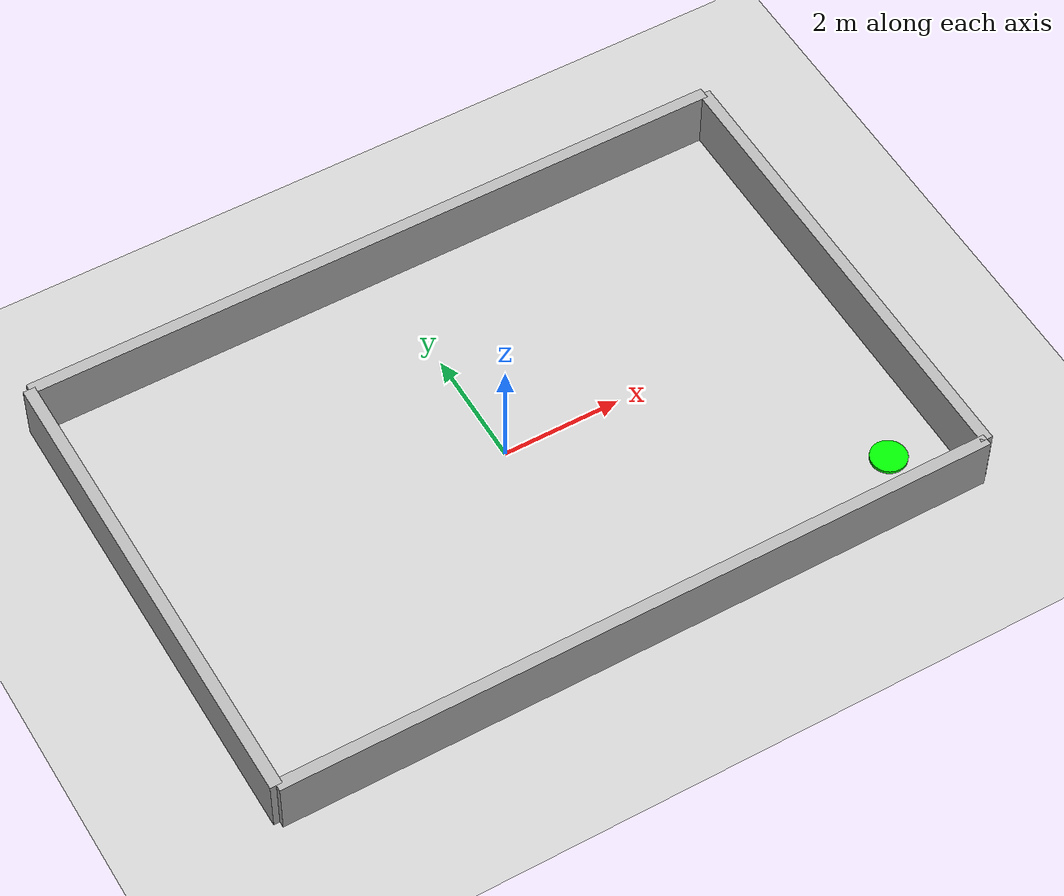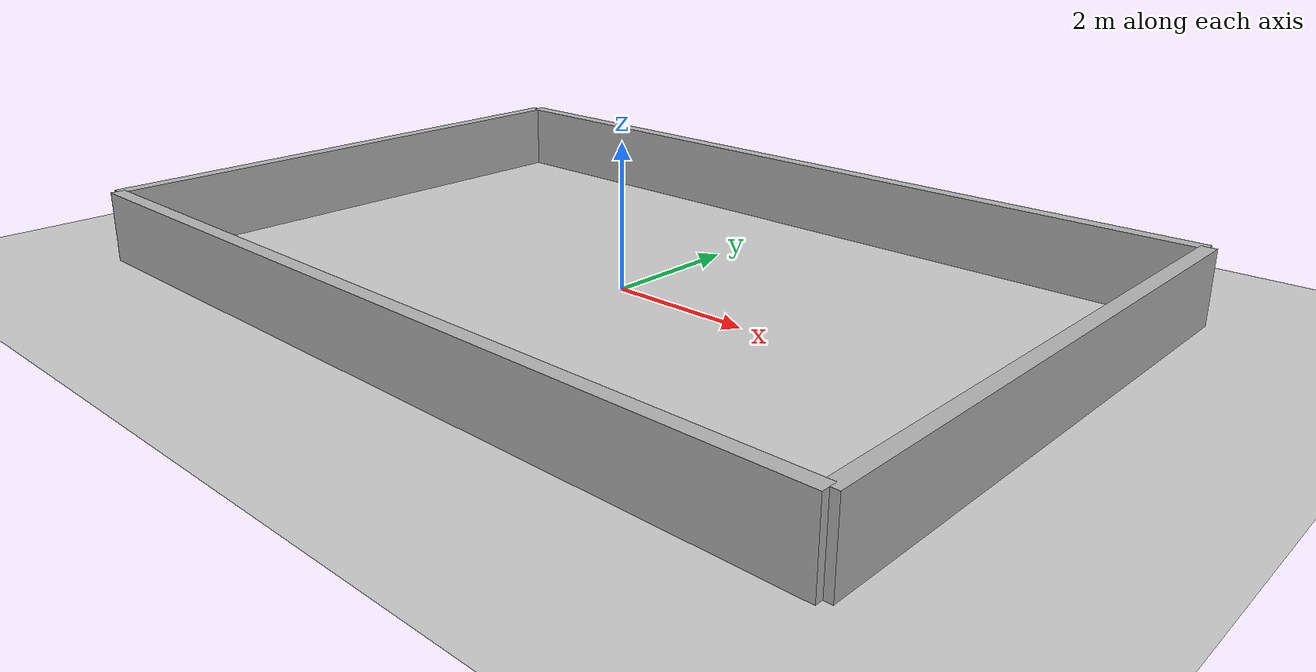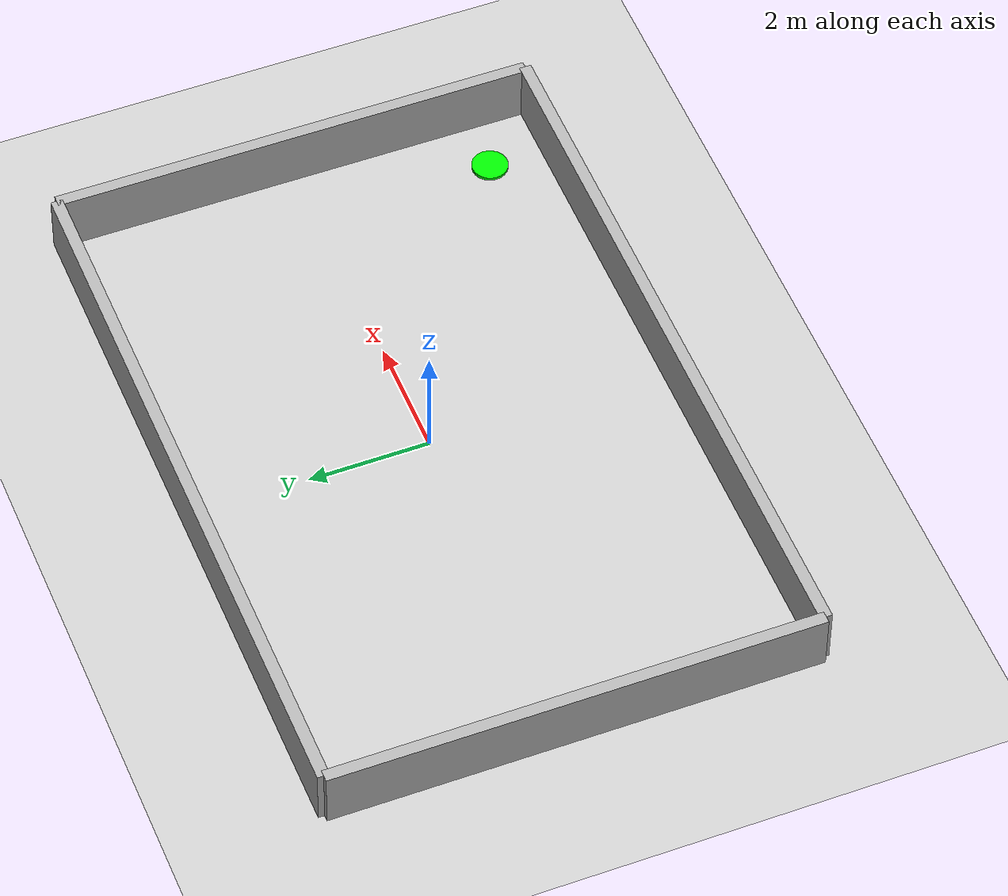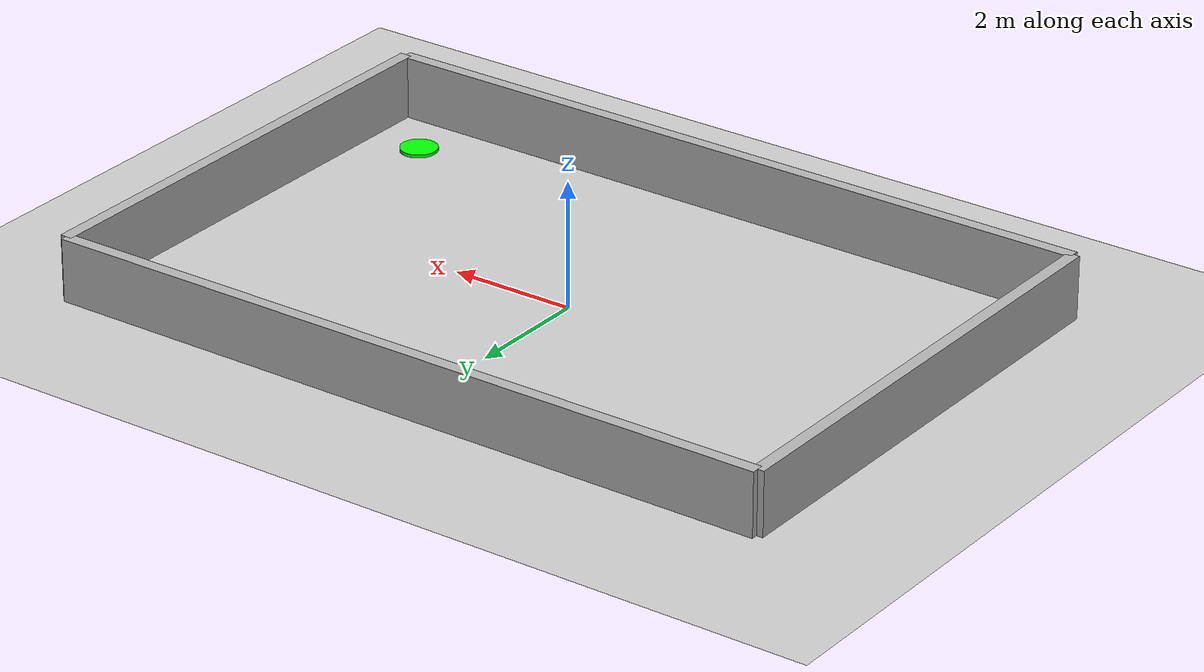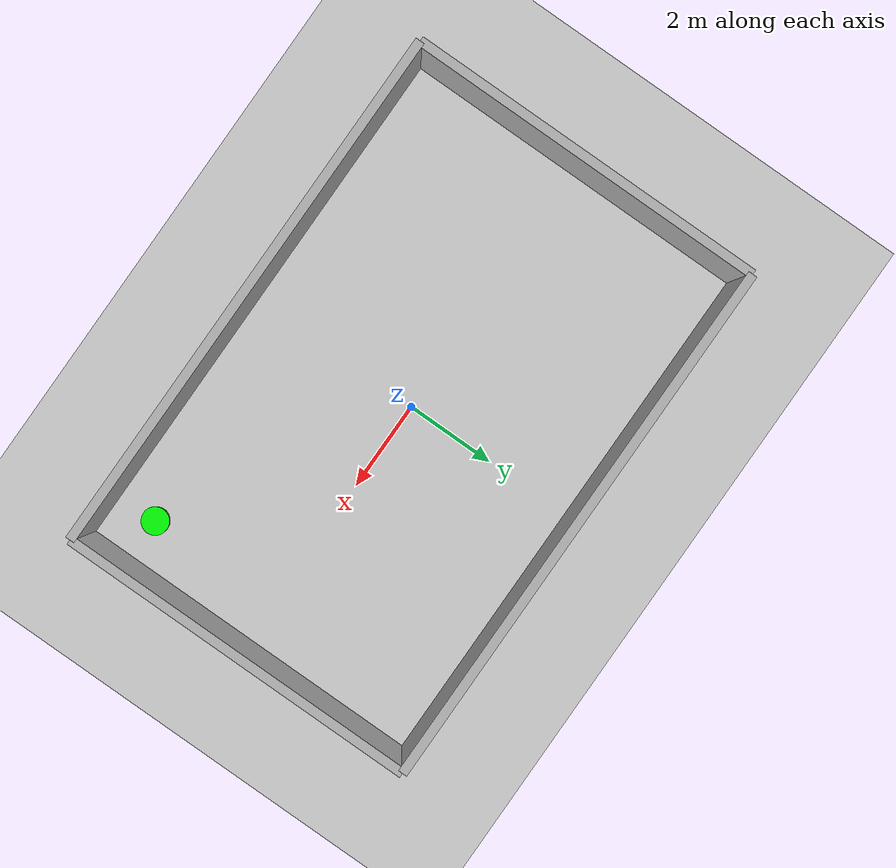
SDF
<?xml version="1.0" ?>
<sdf version="1.8">
  <world name="default">
    <physics name="1ms" type="ode">
      <max_step_size>0.001</max_step_size>
      <real_time_factor>1.0</real_time_factor>
    </physics>

    <plugin filename="gz-sim-physics-system" name="gz::sim::systems::Physics"></plugin>
    <plugin filename="gz-sim-sensors-system" name="gz::sim::systems::Sensors">
      <render_engine>ogre2</render_engine>
    </plugin>
    <plugin filename="gz-sim-user-commands-system" name="gz::sim::systems::UserCommands"></plugin>
    <plugin filename="gz-sim-scene-broadcaster-system" name="gz::sim::systems::SceneBroadcaster"></plugin>
    <plugin filename="gz-sim-contact-system" name="gz::sim::systems::Contact"></plugin>

    <include>
      <uri>https://fuel.gazebosim.org/1.0/OpenRobotics/models/Sun</uri>
    </include>

    <include>
      <uri>https://fuel.gazebosim.org/1.0/OpenRobotics/models/Ground Plane</uri>
    </include>

    <!-- ===================== CORRIDOR WALLS ===================== -->
    <!-- Outer rectangular corridor: 12m x 8m -->

    <model name="wall_north">
      <static>true</static>
      <pose>0 4 0.5 0 0 0</pose>
      <link name="link">
        <collision name="collision">
          <geometry><box><size>12 0.2 1</size></box></geometry>
        </collision>
        <visual name="visual">
          <geometry><box><size>12 0.2 1</size></box></geometry>
          <material><ambient>0.7 0.7 0.7 1</ambient><diffuse>0.7 0.7 0.7 1</diffuse></material>
        </visual>
      </link>
    </model>

    <model name="wall_south">
      <static>true</static>
      <pose>0 -4 0.5 0 0 0</pose>
      <link name="link">
        <collision name="collision">
          <geometry><box><size>12 0.2 1</size></box></geometry>
        </collision>
        <visual name="visual">
          <geometry><box><size>12 0.2 1</size></box></geometry>
          <material><ambient>0.7 0.7 0.7 1</ambient><diffuse>0.7 0.7 0.7 1</diffuse></material>
        </visual>
      </link>
    </model>

    <model name="wall_east">
      <static>true</static>
      <pose>6 0 0.5 0 0 1.5708</pose>
      <link name="link">
        <collision name="collision">
          <geometry><box><size>8 0.2 1</size></box></geometry>
        </collision>
        <visual name="visual">
          <geometry><box><size>8 0.2 1</size></box></geometry>
          <material><ambient>0.7 0.7 0.7 1</ambient><diffuse>0.7 0.7 0.7 1</diffuse></material>
        </visual>
      </link>
    </model>

    <model name="wall_west">
      <static>true</static>
      <pose>-6 0 0.5 0 0 1.5708</pose>
      <link name="link">
        <collision name="collision">
          <geometry><box><size>8 0.2 1</size></box></geometry>
        </collision>
        <visual name="visual">
          <geometry><box><size>8 0.2 1</size></box></geometry>
          <material><ambient>0.7 0.7 0.7 1</ambient><diffuse>0.7 0.7 0.7 1</diffuse></material>
        </visual>
      </link>
    </model>

    <model name="goal_marker">
      <static>true</static>
      <pose>5 -3 0.05 0 0 0</pose>
      <link name="link">
        <visual name="visual">
          <geometry><cylinder><radius>0.3</radius><length>0.05</length></cylinder></geometry>
          <material><ambient>0 1 0 1</ambient><diffuse>0 1 0 1</diffuse></material>
        </visual>
      </link>
    </model>

  </world>
</sdf>
